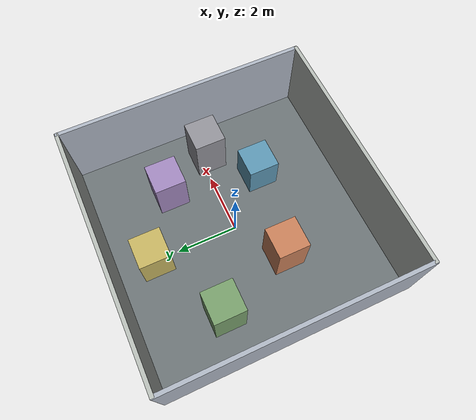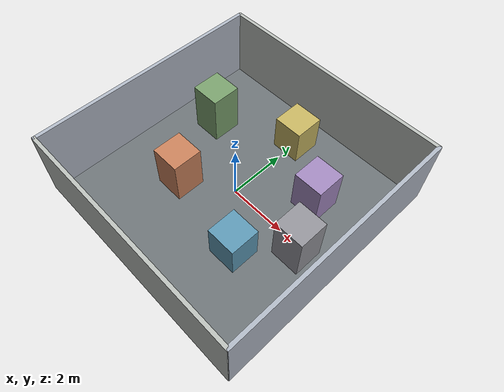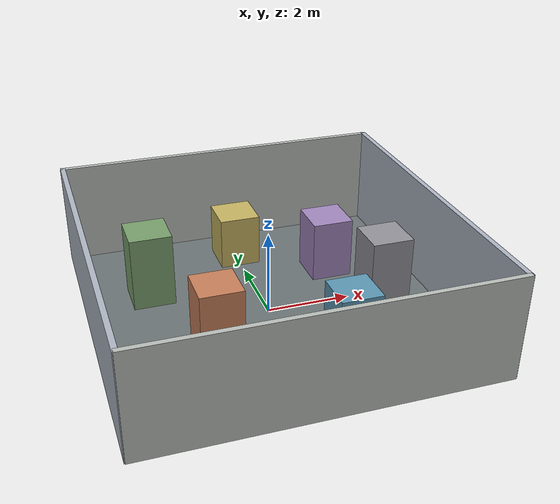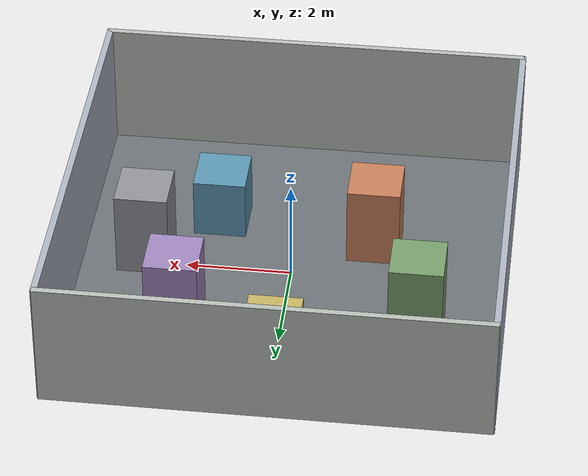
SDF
<sdf version="1.9">
 <world name="mid360_slam_8x8">
  <physics name="1ms" type="ignore">
   <max_step_size>0.001</max_step_size>
   <real_time_factor>1.0</real_time_factor>
  </physics>
  <plugin filename="gz-sim-physics-system" name="gz::sim::systems::Physics"/>
  <plugin filename="gz-sim-sensors-system" name="gz::sim::systems::Sensors">
   <render_engine>ogre2</render_engine>
  </plugin>
  <plugin filename="gz-sim-user-commands-system" name="gz::sim::systems::UserCommands"/>
  <plugin filename="gz-sim-scene-broadcaster-system" name="gz::sim::systems::SceneBroadcaster"/>
  <plugin filename="gz-sim-imu-system" name="gz::sim::systems::Imu"/>
  <plugin filename="gz-sim-navsat-system" name="gz::sim::systems::NavSat"/>
  <scene><ambient>1.0 1.0 1.0</ambient><background>0.78 0.80 0.82</background></scene>
  <spherical_coordinates>
   <latitude_deg>-35.363262</latitude_deg>
   <longitude_deg>149.165237</longitude_deg>
   <elevation>584</elevation>
   <heading_deg>0</heading_deg>
   <surface_model>EARTH_WGS84</surface_model>
  </spherical_coordinates>
  <light type="directional" name="sun">
   <pose>0 0 20 0 0 0</pose>
   <diffuse>0.9 0.9 0.85 1</diffuse>
   <specular>0.6 0.6 0.6 1</specular>
   <attenuation>
    <range>1000</range>
    <constant>0.9</constant>
    <linear>0.01</linear>
    <quadratic>0.001</quadratic>
   </attenuation>
   <direction>-0.45 0.15 -0.88</direction>
  </light>
  <include><name>slam_8x8_field</name><uri>model://slam_8x8_field</uri></include>
 </world>
</sdf>

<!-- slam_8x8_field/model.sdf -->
<sdf version="1.9">
  <model name="slam_8x8_field">
    <static>true</static>
    <link name="field">
      <collision name="floor_collision">
        <pose>0 0 -0.025 0 0 0</pose>
        <geometry>
          <box>
            <size>8.0 8.0 0.05</size>
          </box>
        </geometry>
      </collision>
      <visual name="floor_visual">
        <pose>0 0 -0.025 0 0 0</pose>
        <geometry>
          <box>
            <size>8.0 8.0 0.05</size>
          </box>
        </geometry>
        <material>
          <ambient>0.42 0.45 0.46 1</ambient>
          <diffuse>0.42 0.45 0.46 1</diffuse>
        </material>
      </visual>

      <collision name="north_wall_collision">
        <pose>0 4.06 1.25 0 0 0</pose>
        <geometry><box><size>8.2 0.12 2.5</size></box></geometry>
      </collision>
      <visual name="north_wall_visual">
        <pose>0 4.06 1.25 0 0 0</pose>
        <geometry><box><size>8.2 0.12 2.5</size></box></geometry>
        <material>
          <ambient>0.72 0.74 0.72 1</ambient>
          <diffuse>0.72 0.74 0.72 1</diffuse>
        </material>
      </visual>

      <collision name="south_wall_collision">
        <pose>0 -4.06 1.25 0 0 0</pose>
        <geometry><box><size>8.2 0.12 2.5</size></box></geometry>
      </collision>
      <visual name="south_wall_visual">
        <pose>0 -4.06 1.25 0 0 0</pose>
        <geometry><box><size>8.2 0.12 2.5</size></box></geometry>
        <material>
          <ambient>0.72 0.74 0.72 1</ambient>
          <diffuse>0.72 0.74 0.72 1</diffuse>
        </material>
      </visual>

      <collision name="east_wall_collision">
        <pose>4.06 0 1.25 0 0 0</pose>
        <geometry><box><size>0.12 8.2 2.5</size></box></geometry>
      </collision>
      <visual name="east_wall_visual">
        <pose>4.06 0 1.25 0 0 0</pose>
        <geometry><box><size>0.12 8.2 2.5</size></box></geometry>
        <material>
          <ambient>0.68 0.71 0.76 1</ambient>
          <diffuse>0.68 0.71 0.76 1</diffuse>
        </material>
      </visual>

      <collision name="west_wall_collision">
        <pose>-4.06 0 1.25 0 0 0</pose>
        <geometry><box><size>0.12 8.2 2.5</size></box></geometry>
      </collision>
      <visual name="west_wall_visual">
        <pose>-4.06 0 1.25 0 0 0</pose>
        <geometry><box><size>0.12 8.2 2.5</size></box></geometry>
        <material>
          <ambient>0.68 0.71 0.76 1</ambient>
          <diffuse>0.68 0.71 0.76 1</diffuse>
        </material>
      </visual>

      <collision name="obstacle_1_collision">
        <pose>-1.5 -1.0 0.8 0 0 0</pose>
        <geometry><box><size>1.0 1.0 1.6</size></box></geometry>
      </collision>
      <visual name="obstacle_1_visual">
        <pose>-1.5 -1.0 0.8 0 0 0</pose>
        <geometry><box><size>1.0 1.0 1.6</size></box></geometry>
        <material>
          <ambient>0.78 0.50 0.35 1</ambient>
          <diffuse>0.78 0.50 0.35 1</diffuse>
        </material>
      </visual>

      <collision name="obstacle_2_collision">
        <pose>1.5 -1.5 0.6 0 0 0</pose>
        <geometry><box><size>1.0 1.0 1.2</size></box></geometry>
      </collision>
      <visual name="obstacle_2_visual">
        <pose>1.5 -1.5 0.6 0 0 0</pose>
        <geometry><box><size>1.0 1.0 1.2</size></box></geometry>
        <material>
          <ambient>0.36 0.59 0.70 1</ambient>
          <diffuse>0.36 0.59 0.70 1</diffuse>
        </material>
      </visual>

      <collision name="obstacle_3_collision">
        <pose>-2.5 1.5 0.9 0 0 0</pose>
        <geometry><box><size>1.0 1.0 1.8</size></box></geometry>
      </collision>
      <visual name="obstacle_3_visual">
        <pose>-2.5 1.5 0.9 0 0 0</pose>
        <geometry><box><size>1.0 1.0 1.8</size></box></geometry>
        <material>
          <ambient>0.47 0.62 0.42 1</ambient>
          <diffuse>0.47 0.62 0.42 1</diffuse>
        </material>
      </visual>

      <collision name="obstacle_4_collision">
        <pose>2.0 1.5 0.75 0 0 0</pose>
        <geometry><box><size>1.0 1.0 1.5</size></box></geometry>
      </collision>
      <visual name="obstacle_4_visual">
        <pose>2.0 1.5 0.75 0 0 0</pose>
        <geometry><box><size>1.0 1.0 1.5</size></box></geometry>
        <material>
          <ambient>0.63 0.53 0.74 1</ambient>
          <diffuse>0.63 0.53 0.74 1</diffuse>
        </material>
      </visual>

      <collision name="obstacle_5_collision">
        <pose>0.0 2.8 0.65 0 0 0</pose>
        <geometry><box><size>1.0 1.0 1.3</size></box></geometry>
      </collision>
      <visual name="obstacle_5_visual">
        <pose>0.0 2.8 0.65 0 0 0</pose>
        <geometry><box><size>1.0 1.0 1.3</size></box></geometry>
        <material>
          <ambient>0.77 0.70 0.38 1</ambient>
          <diffuse>0.77 0.70 0.38 1</diffuse>
        </material>
      </visual>

      <collision name="obstacle_6_collision">
        <pose>2.8 -0.2 0.85 0 0 0</pose>
        <geometry><box><size>1.0 1.0 1.7</size></box></geometry>
      </collision>
      <visual name="obstacle_6_visual">
        <pose>2.8 -0.2 0.85 0 0 0</pose>
        <geometry><box><size>1.0 1.0 1.7</size></box></geometry>
        <material>
          <ambient>0.57 0.57 0.60 1</ambient>
          <diffuse>0.57 0.57 0.60 1</diffuse>
        </material>
      </visual>
    </link>
  </model>
</sdf>
